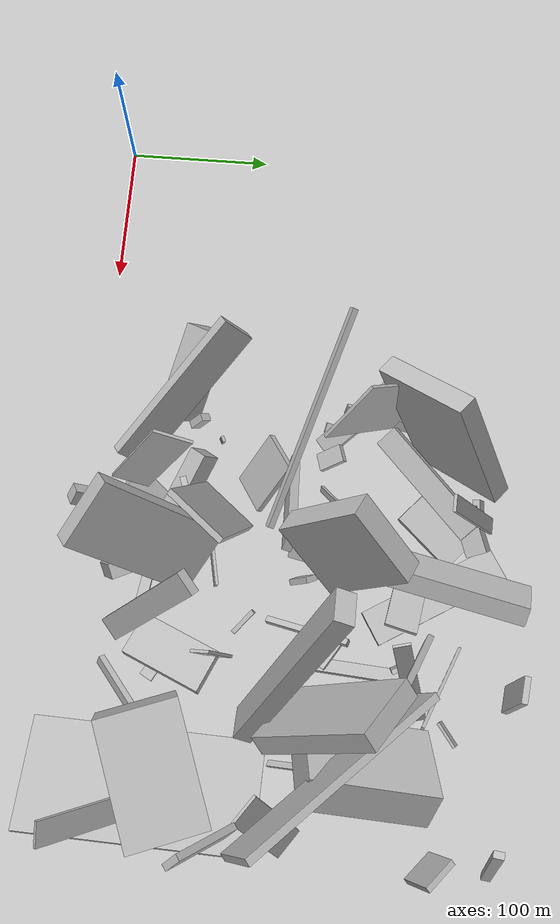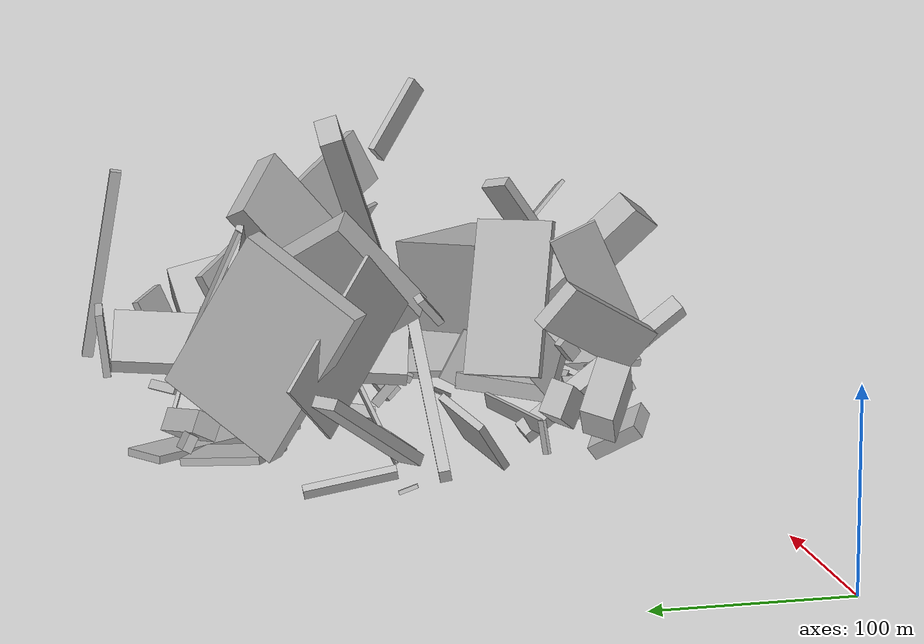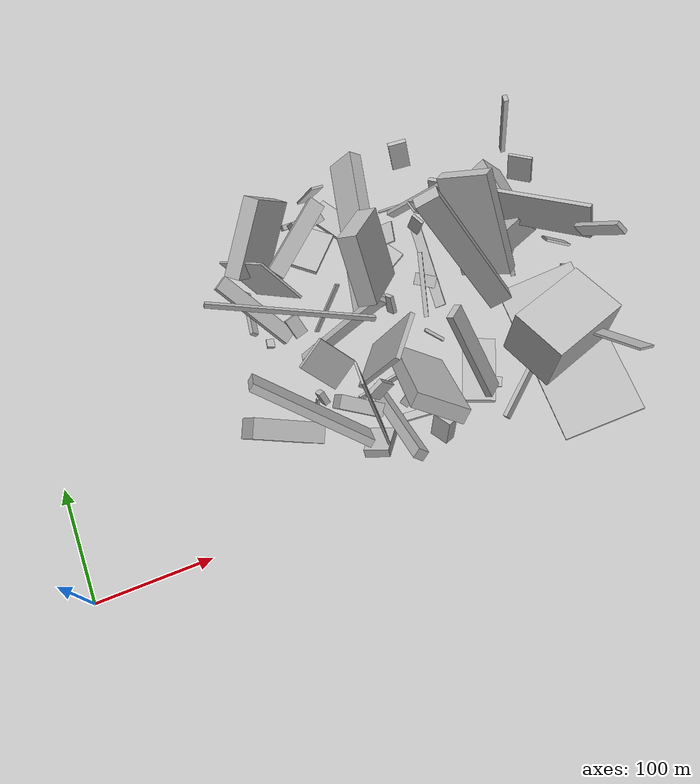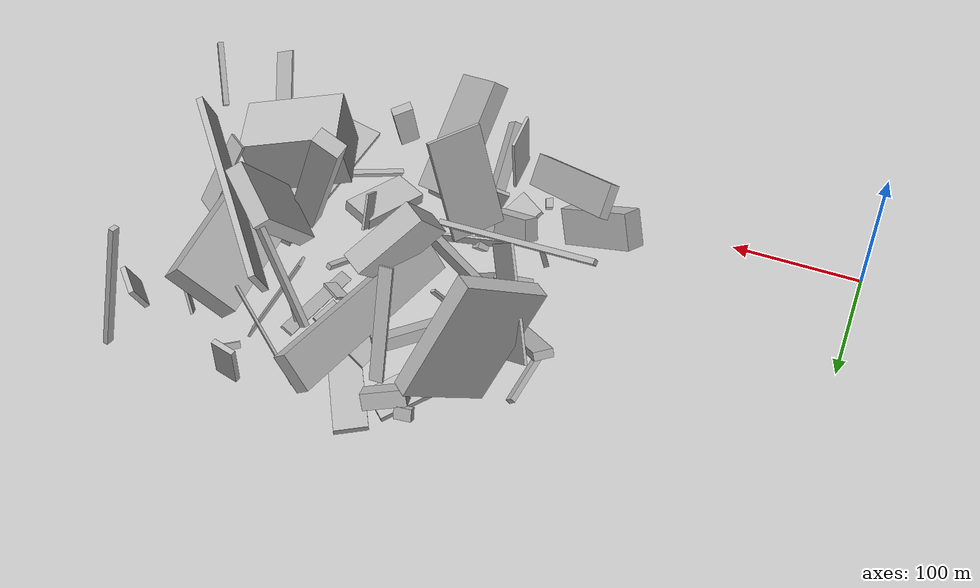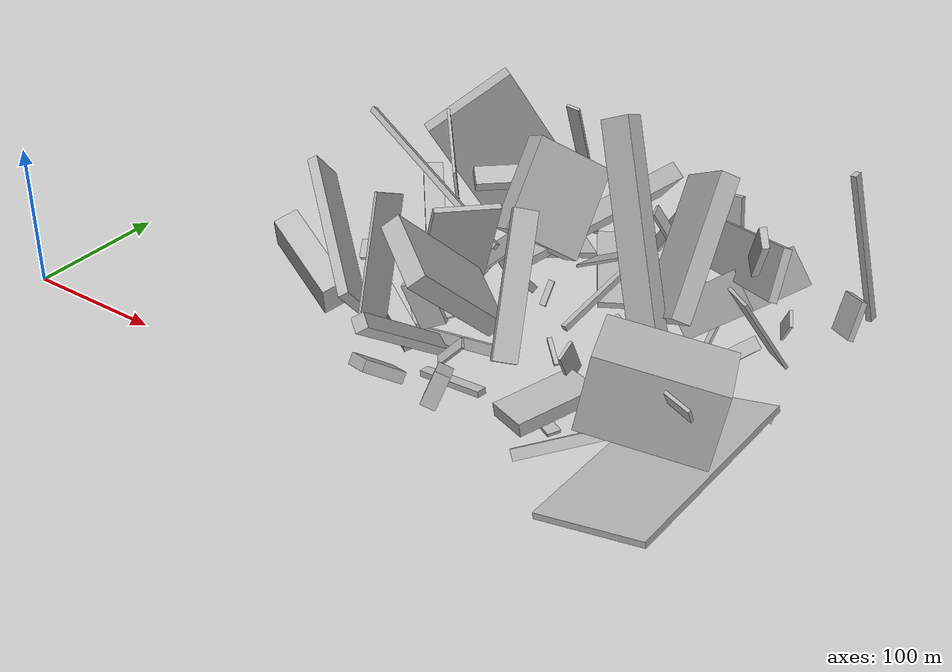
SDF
<sdf version="1.6">
 <world name="default">
  <model name="building_2">
   <static>0</static>
   <pose>389.1670423206415 182.27345326725268 71.20522427125024 0.9985611994210901 0.44155829710526634 0.672200436986714</pose>
   <link name="link">
    <gravity>0</gravity>
    <pose>0 0 23.0 0 0 0</pose>
    <collision name="collision"><geometry><box><size>13 94 46</size></box></geometry></collision>
    <visual name="visual">
     <cast_shadows>0</cast_shadows>
     <geometry><box><size>13 94 46</size></box></geometry>
     <material>
      <script>
       <uri>model://HANNAS_wall/materials/scripts</uri>
       <uri>model://HANNAS_wall/materials/textures</uri>
       <name>vrc/HANNAS_wall</name>
      </script>
     </material>
    </visual>
   </link>
  </model>
  <model name="building_4">
   <static>0</static>
   <pose>284.6367889503489 41.436290306247784 36.51101400669914 0.7848779041602345 0.5691758990537518 -2.6156911117196264</pose>
   <link name="link">
    <gravity>0</gravity>
    <pose>0 0 5.0 0 0 0</pose>
    <collision name="collision"><geometry><box><size>9 104 10</size></box></geometry></collision>
    <visual name="visual">
     <cast_shadows>0</cast_shadows>
     <geometry><box><size>9 104 10</size></box></geometry>
     <material>
      <script>
       <uri>model://HANNAS_wall/materials/scripts</uri>
       <uri>model://HANNAS_wall/materials/textures</uri>
       <name>vrc/HANNAS_wall</name>
      </script>
     </material>
    </visual>
   </link>
  </model>
  <model name="building_5">
   <static>0</static>
   <pose>303.31625523544255 217.26199748995083 42.439125821296315 -0.0667729580504567 -0.6869832761657249 2.960606714397487</pose>
   <link name="link">
    <gravity>0</gravity>
    <pose>0 0 14.5 0 0 0</pose>
    <collision name="collision"><geometry><box><size>13 150 29</size></box></geometry></collision>
    <visual name="visual">
     <cast_shadows>0</cast_shadows>
     <geometry><box><size>13 150 29</size></box></geometry>
     <material>
      <script>
       <uri>model://HANNAS_wall/materials/scripts</uri>
       <uri>model://HANNAS_wall/materials/textures</uri>
       <name>vrc/HANNAS_wall</name>
      </script>
     </material>
    </visual>
   </link>
  </model>
  <model name="building_16">
   <static>0</static>
   <pose>372.4997254167869 144.98639615702987 87.56449912963286 1.093936848090944 0.2971415132475192 1.3772643937018203</pose>
   <link name="link">
    <gravity>0</gravity>
    <pose>0 0 10.5 0 0 0</pose>
    <collision name="collision"><geometry><box><size>12 150 21</size></box></geometry></collision>
    <visual name="visual">
     <cast_shadows>0</cast_shadows>
     <geometry><box><size>12 150 21</size></box></geometry>
     <material>
      <script>
       <uri>model://HANNAS_wall/materials/scripts</uri>
       <uri>model://HANNAS_wall/materials/textures</uri>
       <name>vrc/HANNAS_wall</name>
      </script>
     </material>
    </visual>
   </link>
  </model>
  <model name="building_19">
   <static>0</static>
   <pose>433.5303821482553 90.47722792879836 49.387675971761816 1.0917649847006579 -1.3912077532217386 0.8278886072970991</pose>
   <link name="link">
    <gravity>0</gravity>
    <pose>0 0 25.5 0 0 0</pose>
    <collision name="collision"><geometry><box><size>49 78 51</size></box></geometry></collision>
    <visual name="visual">
     <cast_shadows>0</cast_shadows>
     <geometry><box><size>49 78 51</size></box></geometry>
     <material>
      <script>
       <uri>model://HANNAS_wall/materials/scripts</uri>
       <uri>model://HANNAS_wall/materials/textures</uri>
       <name>vrc/HANNAS_wall</name>
      </script>
     </material>
    </visual>
   </link>
  </model>
  <model name="building_20">
   <static>0</static>
   <pose>313.14509885217643 84.16151838064405 54.130318871678924 0.7341440670826089 0.3880051204111599 -0.5609156109944797</pose>
   <link name="link">
    <gravity>0</gravity>
    <pose>0 0 46.0 0 0 0</pose>
    <collision name="collision"><geometry><box><size>45 13 92</size></box></geometry></collision>
    <visual name="visual">
     <cast_shadows>0</cast_shadows>
     <geometry><box><size>45 13 92</size></box></geometry>
     <material>
      <script>
       <uri>model://HANNAS_wall/materials/scripts</uri>
       <uri>model://HANNAS_wall/materials/textures</uri>
       <name>vrc/HANNAS_wall</name>
      </script>
     </material>
    </visual>
   </link>
  </model>
  <model name="building_29">
   <static>0</static>
   <pose>201.60415786806828 192.60456864345127 9.658196869475445 -0.7237716845833972 0.19765439289558648 1.4251949318037043</pose>
   <link name="link">
    <gravity>0</gravity>
    <pose>0 0 3.5 0 0 0</pose>
    <collision name="collision"><geometry><box><size>47 4 7</size></box></geometry></collision>
    <visual name="visual">
     <cast_shadows>0</cast_shadows>
     <geometry><box><size>47 4 7</size></box></geometry>
     <material>
      <script>
       <uri>model://HANNAS_wall/materials/scripts</uri>
       <uri>model://HANNAS_wall/materials/textures</uri>
       <name>vrc/HANNAS_wall</name>
      </script>
     </material>
    </visual>
   </link>
  </model>
  <model name="building_31">
   <static>0</static>
   <pose>320.92424244755534 191.32142856800064 69.17375716509056 0.9498713634668221 -0.41264947051410455 -0.45686577443252985</pose>
   <link name="link">
    <gravity>0</gravity>
    <pose>0 0 28.0 0 0 0</pose>
    <collision name="collision"><geometry><box><size>17 64 56</size></box></geometry></collision>
    <visual name="visual">
     <cast_shadows>0</cast_shadows>
     <geometry><box><size>17 64 56</size></box></geometry>
     <material>
      <script>
       <uri>model://HANNAS_wall/materials/scripts</uri>
       <uri>model://HANNAS_wall/materials/textures</uri>
       <name>vrc/HANNAS_wall</name>
      </script>
     </material>
    </visual>
   </link>
  </model>
  <model name="building_37">
   <static>0</static>
   <pose>227.4339325967488 160.75758974860616 21.633996870139942 1.4820337109693011 -0.6296216612123448 1.9066985746679765</pose>
   <link name="link">
    <gravity>0</gravity>
    <pose>0 0 6.0 0 0 0</pose>
    <collision name="collision"><geometry><box><size>19 4 12</size></box></geometry></collision>
    <visual name="visual">
     <cast_shadows>0</cast_shadows>
     <geometry><box><size>19 4 12</size></box></geometry>
     <material>
      <script>
       <uri>model://HANNAS_wall/materials/scripts</uri>
       <uri>model://HANNAS_wall/materials/textures</uri>
       <name>vrc/HANNAS_wall</name>
      </script>
     </material>
    </visual>
   </link>
  </model>
  <model name="building_41">
   <static>0</static>
   <pose>318.70690928476915 237.3415982311377 3.370481435347543 0.01441911845690003 -0.00407596934792434 2.1134964530169524</pose>
   <link name="link">
    <gravity>0</gravity>
    <pose>0 0 2.0 0 0 0</pose>
    <collision name="collision"><geometry><box><size>97 24 4</size></box></geometry></collision>
    <visual name="visual">
     <cast_shadows>0</cast_shadows>
     <geometry><box><size>97 24 4</size></box></geometry>
     <material>
      <script>
       <uri>model://HANNAS_wall/materials/scripts</uri>
       <uri>model://HANNAS_wall/materials/textures</uri>
       <name>vrc/HANNAS_wall</name>
      </script>
     </material>
    </visual>
   </link>
  </model>
  <model name="building_42">
   <static>0</static>
   <pose>315.7468793521727 47.71879672735081 14.274376958286426 -0.03754337181879618 -0.14325123115436697 -0.12068900066509265</pose>
   <link name="link">
    <gravity>0</gravity>
    <pose>0 0 2.0 0 0 0</pose>
    <collision name="collision"><geometry><box><size>48 7 4</size></box></geometry></collision>
    <visual name="visual">
     <cast_shadows>0</cast_shadows>
     <geometry><box><size>48 7 4</size></box></geometry>
     <material>
      <script>
       <uri>model://HANNAS_wall/materials/scripts</uri>
       <uri>model://HANNAS_wall/materials/textures</uri>
       <name>vrc/HANNAS_wall</name>
      </script>
     </material>
    </visual>
   </link>
  </model>
  <model name="building_43">
   <static>0</static>
   <pose>274.05725989623136 34.01783897374855 14.162420916816949 1.9348309743036527 -0.5289153004255487 -2.2191907962247406</pose>
   <link name="link">
    <gravity>0</gravity>
    <pose>0 0 11.0 0 0 0</pose>
    <collision name="collision"><geometry><box><size>29 8 22</size></box></geometry></collision>
    <visual name="visual">
     <cast_shadows>0</cast_shadows>
     <geometry><box><size>29 8 22</size></box></geometry>
     <material>
      <script>
       <uri>model://HANNAS_wall/materials/scripts</uri>
       <uri>model://HANNAS_wall/materials/textures</uri>
       <name>vrc/HANNAS_wall</name>
      </script>
     </material>
    </visual>
   </link>
  </model>
  <model name="building_46">
   <static>0</static>
   <pose>434.64756908951847 232.62956048191958 39.27638448647449 1.2205472409256723 0.8111524950324286 -0.32034500634459095</pose>
   <link name="link">
    <gravity>0</gravity>
    <pose>0 0 40.5 0 0 0</pose>
    <collision name="collision"><geometry><box><size>27 51 81</size></box></geometry></collision>
    <visual name="visual">
     <cast_shadows>0</cast_shadows>
     <geometry><box><size>27 51 81</size></box></geometry>
     <material>
      <script>
       <uri>model://HANNAS_wall/materials/scripts</uri>
       <uri>model://HANNAS_wall/materials/textures</uri>
       <name>vrc/HANNAS_wall</name>
      </script>
     </material>
    </visual>
   </link>
  </model>
  <model name="building_47">
   <static>0</static>
   <pose>228.510647873353 148.22319668001188 87.98290972498766 0.5209752103249604 -0.8978062479586 0.8376059530907116</pose>
   <link name="link">
    <gravity>0</gravity>
    <pose>0 0 2.0 0 0 0</pose>
    <collision name="collision"><geometry><box><size>4 144 4</size></box></geometry></collision>
    <visual name="visual">
     <cast_shadows>0</cast_shadows>
     <geometry><box><size>4 144 4</size></box></geometry>
     <material>
      <script>
       <uri>model://HANNAS_wall/materials/scripts</uri>
       <uri>model://HANNAS_wall/materials/textures</uri>
       <name>vrc/HANNAS_wall</name>
      </script>
     </material>
    </visual>
   </link>
  </model>
  <model name="building_52">
   <static>0</static>
   <pose>316.5435947829112 148.5609488382127 29.79684472197738 1.9571599764926173 -0.9061944603601789 1.5726252569122352</pose>
   <link name="link">
    <gravity>0</gravity>
    <pose>0 0 2.0 0 0 0</pose>
    <collision name="collision"><geometry><box><size>17 9 4</size></box></geometry></collision>
    <visual name="visual">
     <cast_shadows>0</cast_shadows>
     <geometry><box><size>17 9 4</size></box></geometry>
     <material>
      <script>
       <uri>model://HANNAS_wall/materials/scripts</uri>
       <uri>model://HANNAS_wall/materials/textures</uri>
       <name>vrc/HANNAS_wall</name>
      </script>
     </material>
    </visual>
   </link>
  </model>
  <model name="building_57">
   <static>0</static>
   <pose>388.2309852131568 225.0954569860752 60.087532771526455 1.1881841142022511 0.2765267406794335 0.6382773924179873</pose>
   <link name="link">
    <gravity>0</gravity>
    <pose>0 0 75.0 0 0 0</pose>
    <collision name="collision"><geometry><box><size>5 31 150</size></box></geometry></collision>
    <visual name="visual">
     <cast_shadows>0</cast_shadows>
     <geometry><box><size>5 31 150</size></box></geometry>
     <material>
      <script>
       <uri>model://HANNAS_wall/materials/scripts</uri>
       <uri>model://HANNAS_wall/materials/textures</uri>
       <name>vrc/HANNAS_wall</name>
      </script>
     </material>
    </visual>
   </link>
  </model>
  <model name="building_62">
   <static>0</static>
   <pose>263.7429303453534 245.9223130909378 8.552621311454029 1.4328227365096493 -1.4256454543184738 0.9919016743763746</pose>
   <link name="link">
    <gravity>0</gravity>
    <pose>0 0 14.0 0 0 0</pose>
    <collision name="collision"><geometry><box><size>4 46 28</size></box></geometry></collision>
    <visual name="visual">
     <cast_shadows>0</cast_shadows>
     <geometry><box><size>4 46 28</size></box></geometry>
     <material>
      <script>
       <uri>model://HANNAS_wall/materials/scripts</uri>
       <uri>model://HANNAS_wall/materials/textures</uri>
       <name>vrc/HANNAS_wall</name>
      </script>
     </material>
    </visual>
   </link>
  </model>
  <model name="building_65">
   <static>0</static>
   <pose>455.86298283144595 131.86423388272777 13.63463411777783 1.5666774662508152 -0.23519875590456785 -0.03450810391615301</pose>
   <link name="link">
    <gravity>0</gravity>
    <pose>0 0 75.0 0 0 0</pose>
    <collision name="collision"><geometry><box><size>72 4 150</size></box></geometry></collision>
    <visual name="visual">
     <cast_shadows>0</cast_shadows>
     <geometry><box><size>72 4 150</size></box></geometry>
     <material>
      <script>
       <uri>model://HANNAS_wall/materials/scripts</uri>
       <uri>model://HANNAS_wall/materials/textures</uri>
       <name>vrc/HANNAS_wall</name>
      </script>
     </material>
    </visual>
   </link>
  </model>
  <model name="building_74">
   <static>0</static>
   <pose>264.7634340503009 139.22775313026523 40.97524564693364 2.8755560670889695 -0.7805948470741145 0.01466957976243835</pose>
   <link name="link">
    <gravity>0</gravity>
    <pose>0 0 5.5 0 0 0</pose>
    <collision name="collision"><geometry><box><size>100 6 11</size></box></geometry></collision>
    <visual name="visual">
     <cast_shadows>0</cast_shadows>
     <geometry><box><size>100 6 11</size></box></geometry>
     <material>
      <script>
       <uri>model://HANNAS_wall/materials/scripts</uri>
       <uri>model://HANNAS_wall/materials/textures</uri>
       <name>vrc/HANNAS_wall</name>
      </script>
     </material>
    </visual>
   </link>
  </model>
  <model name="building_78">
   <static>0</static>
   <pose>275.99998274516895 74.09210834727168 45.33509753903515 1.5416578333138669 -0.4254397138793654 0.34640978617847</pose>
   <link name="link">
    <gravity>0</gravity>
    <pose>0 0 2.0 0 0 0</pose>
    <collision name="collision"><geometry><box><size>18 32 4</size></box></geometry></collision>
    <visual name="visual">
     <cast_shadows>0</cast_shadows>
     <geometry><box><size>18 32 4</size></box></geometry>
     <material>
      <script>
       <uri>model://HANNAS_wall/materials/scripts</uri>
       <uri>model://HANNAS_wall/materials/textures</uri>
       <name>vrc/HANNAS_wall</name>
      </script>
     </material>
    </visual>
   </link>
  </model>
  <model name="building_79">
   <static>0</static>
   <pose>220.36395754484022 234.35822560815112 75.69341940376728 1.5491127936670162 -0.5542182686071871 0.8930779023977912</pose>
   <link name="link">
    <gravity>0</gravity>
    <pose>0 0 6.5 0 0 0</pose>
    <collision name="collision"><geometry><box><size>68 91 13</size></box></geometry></collision>
    <visual name="visual">
     <cast_shadows>0</cast_shadows>
     <geometry><box><size>68 91 13</size></box></geometry>
     <material>
      <script>
       <uri>model://HANNAS_wall/materials/scripts</uri>
       <uri>model://HANNAS_wall/materials/textures</uri>
       <name>vrc/HANNAS_wall</name>
      </script>
     </material>
    </visual>
   </link>
  </model>
  <model name="building_81">
   <static>0</static>
   <pose>361.2508088270936 34.14463631464784 56.214788018666255 0.2720307812037077 0.6047073873794895 2.4139935360659406</pose>
   <link name="link">
    <gravity>0</gravity>
    <pose>0 0 44.5 0 0 0</pose>
    <collision name="collision"><geometry><box><size>6 15 89</size></box></geometry></collision>
    <visual name="visual">
     <cast_shadows>0</cast_shadows>
     <geometry><box><size>6 15 89</size></box></geometry>
     <material>
      <script>
       <uri>model://HANNAS_wall/materials/scripts</uri>
       <uri>model://HANNAS_wall/materials/textures</uri>
       <name>vrc/HANNAS_wall</name>
      </script>
     </material>
    </visual>
   </link>
  </model>
  <model name="building_88">
   <static>0</static>
   <pose>384.1232346292489 281.71058568733935 27.163844582149977 0.1140470458460885 0.14837261912713195 2.986008659828567</pose>
   <link name="link">
    <gravity>0</gravity>
    <pose>0 0 17.5 0 0 0</pose>
    <collision name="collision"><geometry><box><size>17 4 35</size></box></geometry></collision>
    <visual name="visual">
     <cast_shadows>0</cast_shadows>
     <geometry><box><size>17 4 35</size></box></geometry>
     <material>
      <script>
       <uri>model://HANNAS_wall/materials/scripts</uri>
       <uri>model://HANNAS_wall/materials/textures</uri>
       <name>vrc/HANNAS_wall</name>
      </script>
     </material>
    </visual>
   </link>
  </model>
  <model name="building_89">
   <static>0</static>
   <pose>482.3480845912686 267.44780863432004 62.267912495179445 1.7455653002927674 0.15064375655466677 -1.6881913384862797</pose>
   <link name="link">
    <gravity>0</gravity>
    <pose>0 0 2.0 0 0 0</pose>
    <collision name="collision"><geometry><box><size>6 109 4</size></box></geometry></collision>
    <visual name="visual">
     <cast_shadows>0</cast_shadows>
     <geometry><box><size>6 109 4</size></box></geometry>
     <material>
      <script>
       <uri>model://HANNAS_wall/materials/scripts</uri>
       <uri>model://HANNAS_wall/materials/textures</uri>
       <name>vrc/HANNAS_wall</name>
      </script>
     </material>
    </visual>
   </link>
  </model>
  <model name="building_90">
   <static>0</static>
   <pose>215.60282484766248 72.4855160644598 69.32017574770919 0.4888629836331101 -0.5202374690246356 0.614269042374367</pose>
   <link name="link">
    <gravity>0</gravity>
    <pose>0 0 12.5 0 0 0</pose>
    <collision name="collision"><geometry><box><size>7 108 25</size></box></geometry></collision>
    <visual name="visual">
     <cast_shadows>0</cast_shadows>
     <geometry><box><size>7 108 25</size></box></geometry>
     <material>
      <script>
       <uri>model://HANNAS_wall/materials/scripts</uri>
       <uri>model://HANNAS_wall/materials/textures</uri>
       <name>vrc/HANNAS_wall</name>
      </script>
     </material>
    </visual>
   </link>
  </model>
  <model name="building_92">
   <static>0</static>
   <pose>291.5185681723523 262.9176216293496 22.251214445334323 -1.2093817952874621 1.0565301344638904 2.2495448554806794</pose>
   <link name="link">
    <gravity>0</gravity>
    <pose>0 0 15.5 0 0 0</pose>
    <collision name="collision"><geometry><box><size>12 14 31</size></box></geometry></collision>
    <visual name="visual">
     <cast_shadows>0</cast_shadows>
     <geometry><box><size>12 14 31</size></box></geometry>
     <material>
      <script>
       <uri>model://HANNAS_wall/materials/scripts</uri>
       <uri>model://HANNAS_wall/materials/textures</uri>
       <name>vrc/HANNAS_wall</name>
      </script>
     </material>
    </visual>
   </link>
  </model>
  <model name="building_94">
   <static>0</static>
   <pose>353.52935770626084 153.03255620187463 35.36307153388805 -1.7642546597403885 -0.4084046737762466 1.3118072017448232</pose>
   <link name="link">
    <gravity>0</gravity>
    <pose>0 0 2.0 0 0 0</pose>
    <collision name="collision"><geometry><box><size>58 4 4</size></box></geometry></collision>
    <visual name="visual">
     <cast_shadows>0</cast_shadows>
     <geometry><box><size>58 4 4</size></box></geometry>
     <material>
      <script>
       <uri>model://HANNAS_wall/materials/scripts</uri>
       <uri>model://HANNAS_wall/materials/textures</uri>
       <name>vrc/HANNAS_wall</name>
      </script>
     </material>
    </visual>
   </link>
  </model>
  <model name="building_98">
   <static>0</static>
   <pose>468.77831909204775 118.25755503057177 117.11589020386232 -0.1316108823249958 -0.6987809681843796 2.2914398648575216</pose>
   <link name="link">
    <gravity>0</gravity>
    <pose>0 0 23.0 0 0 0</pose>
    <collision name="collision"><geometry><box><size>12 4 46</size></box></geometry></collision>
    <visual name="visual">
     <cast_shadows>0</cast_shadows>
     <geometry><box><size>12 4 46</size></box></geometry>
     <material>
      <script>
       <uri>model://HANNAS_wall/materials/scripts</uri>
       <uri>model://HANNAS_wall/materials/textures</uri>
       <name>vrc/HANNAS_wall</name>
      </script>
     </material>
    </visual>
   </link>
  </model>
  <model name="building_102">
   <static>0</static>
   <pose>405.0782691118284 42.38670661916828 14.78896529948014 -2.7252784121750553 0.9840806839084062 -0.5224623542685947</pose>
   <link name="link">
    <gravity>0</gravity>
    <pose>0 0 2.0 0 0 0</pose>
    <collision name="collision"><geometry><box><size>7 74 4</size></box></geometry></collision>
    <visual name="visual">
     <cast_shadows>0</cast_shadows>
     <geometry><box><size>7 74 4</size></box></geometry>
     <material>
      <script>
       <uri>model://HANNAS_wall/materials/scripts</uri>
       <uri>model://HANNAS_wall/materials/textures</uri>
       <name>vrc/HANNAS_wall</name>
      </script>
     </material>
    </visual>
   </link>
  </model>
  <model name="building_109">
   <static>0</static>
   <pose>266.1319594910262 166.67691930610275 25.97564947668915 0.9838405583631831 -0.27467626974025827 -1.3949065083047376</pose>
   <link name="link">
    <gravity>0</gravity>
    <pose>0 0 2.0 0 0 0</pose>
    <collision name="collision"><geometry><box><size>2 54 4</size></box></geometry></collision>
    <visual name="visual">
     <cast_shadows>0</cast_shadows>
     <geometry><box><size>2 54 4</size></box></geometry>
     <material>
      <script>
       <uri>model://HANNAS_wall/materials/scripts</uri>
       <uri>model://HANNAS_wall/materials/textures</uri>
       <name>vrc/HANNAS_wall</name>
      </script>
     </material>
    </visual>
   </link>
  </model>
  <model name="building_111">
   <static>0</static>
   <pose>476.8431613345117 131.80723036171705 65.58063740689929 1.5679691759159466 0.5793500522657055 -2.1967118919852013</pose>
   <link name="link">
    <gravity>0</gravity>
    <pose>0 0 10.0 0 0 0</pose>
    <collision name="collision"><geometry><box><size>2 60 20</size></box></geometry></collision>
    <visual name="visual">
     <cast_shadows>0</cast_shadows>
     <geometry><box><size>2 60 20</size></box></geometry>
     <material>
      <script>
       <uri>model://HANNAS_wall/materials/scripts</uri>
       <uri>model://HANNAS_wall/materials/textures</uri>
       <name>vrc/HANNAS_wall</name>
      </script>
     </material>
    </visual>
   </link>
  </model>
  <model name="building_113">
   <static>0</static>
   <pose>247.11226291818113 117.57982727671464 21.43983230413586 2.632843526804643 -0.7395147118765709 2.4610243388051396</pose>
   <link name="link">
    <gravity>0</gravity>
    <pose>0 0 2.0 0 0 0</pose>
    <collision name="collision"><geometry><box><size>42 31 4</size></box></geometry></collision>
    <visual name="visual">
     <cast_shadows>0</cast_shadows>
     <geometry><box><size>42 31 4</size></box></geometry>
     <material>
      <script>
       <uri>model://HANNAS_wall/materials/scripts</uri>
       <uri>model://HANNAS_wall/materials/textures</uri>
       <name>vrc/HANNAS_wall</name>
      </script>
     </material>
    </visual>
   </link>
  </model>
  <model name="building_115">
   <static>0</static>
   <pose>255.23844494066248 74.11279123364096 21.193686588926983 0.4061487447923742 -0.27692762168754115 1.0025187260409953</pose>
   <link name="link">
    <gravity>0</gravity>
    <pose>0 0 9.0 0 0 0</pose>
    <collision name="collision"><geometry><box><size>12 40 18</size></box></geometry></collision>
    <visual name="visual">
     <cast_shadows>0</cast_shadows>
     <geometry><box><size>12 40 18</size></box></geometry>
     <material>
      <script>
       <uri>model://HANNAS_wall/materials/scripts</uri>
       <uri>model://HANNAS_wall/materials/textures</uri>
       <name>vrc/HANNAS_wall</name>
      </script>
     </material>
    </visual>
   </link>
  </model>
  <model name="building_117">
   <static>0</static>
   <pose>302.09006906772 63.3985581710382 24.43502520551547 2.2842575173880433 -0.2608384492185673 2.236511841525286</pose>
   <link name="link">
    <gravity>0</gravity>
    <pose>0 0 1.0 0 0 0</pose>
    <collision name="collision"><geometry><box><size>8 22 2</size></box></geometry></collision>
    <visual name="visual">
     <cast_shadows>0</cast_shadows>
     <geometry><box><size>8 22 2</size></box></geometry>
     <material>
      <script>
       <uri>model://HANNAS_wall/materials/scripts</uri>
       <uri>model://HANNAS_wall/materials/textures</uri>
       <name>vrc/HANNAS_wall</name>
      </script>
     </material>
    </visual>
   </link>
  </model>
  <model name="building_121">
   <static>0</static>
   <pose>351.6553338341407 230.42337860386377 37.15244680375318 0.05442105328511181 0.639249499028925 -0.417751865149305</pose>
   <link name="link">
    <gravity>0</gravity>
    <pose>0 0 38.0 0 0 0</pose>
    <collision name="collision"><geometry><box><size>8 4 76</size></box></geometry></collision>
    <visual name="visual">
     <cast_shadows>0</cast_shadows>
     <geometry><box><size>8 4 76</size></box></geometry>
     <material>
      <script>
       <uri>model://HANNAS_wall/materials/scripts</uri>
       <uri>model://HANNAS_wall/materials/textures</uri>
       <name>vrc/HANNAS_wall</name>
      </script>
     </material>
    </visual>
   </link>
  </model>
  <model name="building_122">
   <static>0</static>
   <pose>400.07554412558534 242.65664001265776 10.512209997991357 -1.5478466630674486 0.5156280879417513 -0.925149878228621</pose>
   <link name="link">
    <gravity>0</gravity>
    <pose>0 0 9.0 0 0 0</pose>
    <collision name="collision"><geometry><box><size>2 5 18</size></box></geometry></collision>
    <visual name="visual">
     <cast_shadows>0</cast_shadows>
     <geometry><box><size>2 5 18</size></box></geometry>
     <material>
      <script>
       <uri>model://HANNAS_wall/materials/scripts</uri>
       <uri>model://HANNAS_wall/materials/textures</uri>
       <name>vrc/HANNAS_wall</name>
      </script>
     </material>
    </visual>
   </link>
  </model>
  <model name="building_124">
   <static>0</static>
   <pose>448.1558698958397 166.57521102341474 26.468365776075235 2.5426028154269416 -0.7402328452615169 2.8133631828014147</pose>
   <link name="link">
    <gravity>0</gravity>
    <pose>0 0 5.5 0 0 0</pose>
    <collision name="collision"><geometry><box><size>9 23 11</size></box></geometry></collision>
    <visual name="visual">
     <cast_shadows>0</cast_shadows>
     <geometry><box><size>9 23 11</size></box></geometry>
     <material>
      <script>
       <uri>model://HANNAS_wall/materials/scripts</uri>
       <uri>model://HANNAS_wall/materials/textures</uri>
       <name>vrc/HANNAS_wall</name>
      </script>
     </material>
    </visual>
   </link>
  </model>
  <model name="building_125">
   <static>0</static>
   <pose>216.05850919155597 58.32487615262255 35.117791236342136 1.1140812362222459 0.2634256433060683 -1.9996236575756432</pose>
   <link name="link">
    <gravity>0</gravity>
    <pose>0 0 31.0 0 0 0</pose>
    <collision name="collision"><geometry><box><size>17 28 62</size></box></geometry></collision>
    <visual name="visual">
     <cast_shadows>0</cast_shadows>
     <geometry><box><size>17 28 62</size></box></geometry>
     <material>
      <script>
       <uri>model://HANNAS_wall/materials/scripts</uri>
       <uri>model://HANNAS_wall/materials/textures</uri>
       <name>vrc/HANNAS_wall</name>
      </script>
     </material>
    </visual>
   </link>
  </model>
  <model name="building_139">
   <static>0</static>
   <pose>358.8897375567584 41.87459998936614 10.035208214630368 -1.4562202663466854 -0.08973973111074769 -0.4223682556020242</pose>
   <link name="link">
    <gravity>0</gravity>
    <pose>0 0 28.0 0 0 0</pose>
    <collision name="collision"><geometry><box><size>29 9 56</size></box></geometry></collision>
    <visual name="visual">
     <cast_shadows>0</cast_shadows>
     <geometry><box><size>29 9 56</size></box></geometry>
     <material>
      <script>
       <uri>model://HANNAS_wall/materials/scripts</uri>
       <uri>model://HANNAS_wall/materials/textures</uri>
       <name>vrc/HANNAS_wall</name>
      </script>
     </material>
    </visual>
   </link>
  </model>
  <model name="building_141">
   <static>0</static>
   <pose>254.87146395106075 262.1435203815007 21.14719614445451 -1.6996722082782965 0.4841241646373949 -1.589479314384761</pose>
   <link name="link">
    <gravity>0</gravity>
    <pose>0 0 6.5 0 0 0</pose>
    <collision name="collision"><geometry><box><size>5 9 13</size></box></geometry></collision>
    <visual name="visual">
     <cast_shadows>0</cast_shadows>
     <geometry><box><size>5 9 13</size></box></geometry>
     <material>
      <script>
       <uri>model://HANNAS_wall/materials/scripts</uri>
       <uri>model://HANNAS_wall/materials/textures</uri>
       <name>vrc/HANNAS_wall</name>
      </script>
     </material>
    </visual>
   </link>
  </model>
  <model name="building_142">
   <static>0</static>
   <pose>275.8636331219276 97.12452725035985 40.52087585747597 0.0725428639966856 -0.3556924346666071 2.4366362734845013</pose>
   <link name="link">
    <gravity>0</gravity>
    <pose>0 0 40.0 0 0 0</pose>
    <collision name="collision"><geometry><box><size>4 42 80</size></box></geometry></collision>
    <visual name="visual">
     <cast_shadows>0</cast_shadows>
     <geometry><box><size>4 42 80</size></box></geometry>
     <material>
      <script>
       <uri>model://HANNAS_wall/materials/scripts</uri>
       <uri>model://HANNAS_wall/materials/textures</uri>
       <name>vrc/HANNAS_wall</name>
      </script>
     </material>
    </visual>
   </link>
  </model>
  <model name="building_146">
   <static>0</static>
   <pose>370.54405752239956 94.28707721923999 26.11005454881494 1.4976301627246638 -1.0750069159544942 -1.5285887248097152</pose>
   <link name="link">
    <gravity>0</gravity>
    <pose>0 0 1.0 0 0 0</pose>
    <collision name="collision"><geometry><box><size>29 14 2</size></box></geometry></collision>
    <visual name="visual">
     <cast_shadows>0</cast_shadows>
     <geometry><box><size>29 14 2</size></box></geometry>
     <material>
      <script>
       <uri>model://HANNAS_wall/materials/scripts</uri>
       <uri>model://HANNAS_wall/materials/textures</uri>
       <name>vrc/HANNAS_wall</name>
      </script>
     </material>
    </visual>
   </link>
  </model>
  <model name="building_151">
   <static>0</static>
   <pose>202.26731507861055 184.59296378067248 33.77402973168136 0.5616522059067752 0.009629618494935882 0.6823911045463801</pose>
   <link name="link">
    <gravity>0</gravity>
    <pose>0 0 3.0 0 0 0</pose>
    <collision name="collision"><geometry><box><size>14 80 6</size></box></geometry></collision>
    <visual name="visual">
     <cast_shadows>0</cast_shadows>
     <geometry><box><size>14 80 6</size></box></geometry>
     <material>
      <script>
       <uri>model://HANNAS_wall/materials/scripts</uri>
       <uri>model://HANNAS_wall/materials/textures</uri>
       <name>vrc/HANNAS_wall</name>
      </script>
     </material>
    </visual>
   </link>
  </model>
  <model name="building_157">
   <static>0</static>
   <pose>292.9241457567226 86.94178802852518 19.781847910156813 3.1248469312379745 -0.18647954039774975 -1.3677099751048756</pose>
   <link name="link">
    <gravity>0</gravity>
    <pose>0 0 4.0 0 0 0</pose>
    <collision name="collision"><geometry><box><size>2 64 8</size></box></geometry></collision>
    <visual name="visual">
     <cast_shadows>0</cast_shadows>
     <geometry><box><size>2 64 8</size></box></geometry>
     <material>
      <script>
       <uri>model://HANNAS_wall/materials/scripts</uri>
       <uri>model://HANNAS_wall/materials/textures</uri>
       <name>vrc/HANNAS_wall</name>
      </script>
     </material>
    </visual>
   </link>
  </model>
  <model name="building_160">
   <static>0</static>
   <pose>278.3308583896512 265.5026279022157 49.05683332099656 0.44173134734294484 0.08183773462493178 -0.03935109150291381</pose>
   <link name="link">
    <gravity>0</gravity>
    <pose>0 0 40.0 0 0 0</pose>
    <collision name="collision"><geometry><box><size>10 2 80</size></box></geometry></collision>
    <visual name="visual">
     <cast_shadows>0</cast_shadows>
     <geometry><box><size>10 2 80</size></box></geometry>
     <material>
      <script>
       <uri>model://HANNAS_wall/materials/scripts</uri>
       <uri>model://HANNAS_wall/materials/textures</uri>
       <name>vrc/HANNAS_wall</name>
      </script>
     </material>
    </visual>
   </link>
  </model>
  <model name="building_163">
   <static>0</static>
   <pose>362.03258233876795 168.36590853759586 8.619517518705248 0.42892078151378277 0.057236777251381 -0.5707967615244628</pose>
   <link name="link">
    <gravity>0</gravity>
    <pose>0 0 1.0 0 0 0</pose>
    <collision name="collision"><geometry><box><size>20 11 2</size></box></geometry></collision>
    <visual name="visual">
     <cast_shadows>0</cast_shadows>
     <geometry><box><size>20 11 2</size></box></geometry>
     <material>
      <script>
       <uri>model://HANNAS_wall/materials/scripts</uri>
       <uri>model://HANNAS_wall/materials/textures</uri>
       <name>vrc/HANNAS_wall</name>
      </script>
     </material>
    </visual>
   </link>
  </model>
  <model name="building_167">
   <static>0</static>
   <pose>434.19713316011257 155.911046378937 46.479893909177484 2.7544629373641074 -0.7269019970153053 1.52467001250572</pose>
   <link name="link">
    <gravity>0</gravity>
    <pose>0 0 1.0 0 0 0</pose>
    <collision name="collision"><geometry><box><size>56 4 2</size></box></geometry></collision>
    <visual name="visual">
     <cast_shadows>0</cast_shadows>
     <geometry><box><size>56 4 2</size></box></geometry>
     <material>
      <script>
       <uri>model://HANNAS_wall/materials/scripts</uri>
       <uri>model://HANNAS_wall/materials/textures</uri>
       <name>vrc/HANNAS_wall</name>
      </script>
     </material>
    </visual>
   </link>
  </model>
  <model name="building_169">
   <static>0</static>
   <pose>262.02211047297993 217.8174704118423 62.312545168580456 0.023170717446887888 1.0939980531867393 2.3452817540359443</pose>
   <link name="link">
    <gravity>0</gravity>
    <pose>0 0 7.5 0 0 0</pose>
    <collision name="collision"><geometry><box><size>8 80 15</size></box></geometry></collision>
    <visual name="visual">
     <cast_shadows>0</cast_shadows>
     <geometry><box><size>8 80 15</size></box></geometry>
     <material>
      <script>
       <uri>model://HANNAS_wall/materials/scripts</uri>
       <uri>model://HANNAS_wall/materials/textures</uri>
       <name>vrc/HANNAS_wall</name>
      </script>
     </material>
    </visual>
   </link>
  </model>
  <model name="building_176">
   <static>0</static>
   <pose>225.47870520393005 178.26193829624904 60.97853670761299 0.13782181715379932 -0.8293669195936381 -1.016339831990581</pose>
   <link name="link">
    <gravity>0</gravity>
    <pose>0 0 23.0 0 0 0</pose>
    <collision name="collision"><geometry><box><size>80 2 46</size></box></geometry></collision>
    <visual name="visual">
     <cast_shadows>0</cast_shadows>
     <geometry><box><size>80 2 46</size></box></geometry>
     <material>
      <script>
       <uri>model://HANNAS_wall/materials/scripts</uri>
       <uri>model://HANNAS_wall/materials/textures</uri>
       <name>vrc/HANNAS_wall</name>
      </script>
     </material>
    </visual>
   </link>
  </model>
  <model name="building_178">
   <static>0</static>
   <pose>206.66077778774272 157.72512616621475 5.968858025029261 1.9377853025442118 -0.23246780830980862 2.9073609368688347</pose>
   <link name="link">
    <gravity>0</gravity>
    <pose>0 0 5.0 0 0 0</pose>
    <collision name="collision"><geometry><box><size>7 2 10</size></box></geometry></collision>
    <visual name="visual">
     <cast_shadows>0</cast_shadows>
     <geometry><box><size>7 2 10</size></box></geometry>
     <material>
      <script>
       <uri>model://HANNAS_wall/materials/scripts</uri>
       <uri>model://HANNAS_wall/materials/textures</uri>
       <name>vrc/HANNAS_wall</name>
      </script>
     </material>
    </visual>
   </link>
  </model>
  <model name="building_187">
   <static>0</static>
   <pose>378.4903243898843 240.16994749273488 27.475111109154437 -1.4683394224406234 -0.680548270176271 -0.48657045277172256</pose>
   <link name="link">
    <gravity>0</gravity>
    <pose>0 0 1.0 0 0 0</pose>
    <collision name="collision"><geometry><box><size>80 2 2</size></box></geometry></collision>
    <visual name="visual">
     <cast_shadows>0</cast_shadows>
     <geometry><box><size>80 2 2</size></box></geometry>
     <material>
      <script>
       <uri>model://HANNAS_wall/materials/scripts</uri>
       <uri>model://HANNAS_wall/materials/textures</uri>
       <name>vrc/HANNAS_wall</name>
      </script>
     </material>
    </visual>
   </link>
  </model>
  <model name="building_189">
   <static>0</static>
   <pose>470.1032423446489 40.25764819591295 67.60862289881904 2.3445179914677174 0.39925057172991063 -0.004126499087121538</pose>
   <link name="link">
    <gravity>0</gravity>
    <pose>0 0 1.0 0 0 0</pose>
    <collision name="collision"><geometry><box><size>16 80 2</size></box></geometry></collision>
    <visual name="visual">
     <cast_shadows>0</cast_shadows>
     <geometry><box><size>16 80 2</size></box></geometry>
     <material>
      <script>
       <uri>model://HANNAS_wall/materials/scripts</uri>
       <uri>model://HANNAS_wall/materials/textures</uri>
       <name>vrc/HANNAS_wall</name>
      </script>
     </material>
    </visual>
   </link>
  </model>
  <model name="building_194">
   <static>0</static>
   <pose>485.54583699159207 126.46341467779301 12.893283482425886 0.47667718556472893 -0.45067606499010526 -2.511485919905122</pose>
   <link name="link">
    <gravity>0</gravity>
    <pose>0 0 4.5 0 0 0</pose>
    <collision name="collision"><geometry><box><size>2 9 9</size></box></geometry></collision>
    <visual name="visual">
     <cast_shadows>0</cast_shadows>
     <geometry><box><size>2 9 9</size></box></geometry>
     <material>
      <script>
       <uri>model://HANNAS_wall/materials/scripts</uri>
       <uri>model://HANNAS_wall/materials/textures</uri>
       <name>vrc/HANNAS_wall</name>
      </script>
     </material>
    </visual>
   </link>
  </model>
  <model name="building_207">
   <static>0</static>
   <pose>487.50154499686755 231.78574873559472 17.91018139873293 -0.34264592036653796 -0.2324403179312303 -0.7478489650753314</pose>
   <link name="link">
    <gravity>0</gravity>
    <pose>0 0 13.0 0 0 0</pose>
    <collision name="collision"><geometry><box><size>23 4 26</size></box></geometry></collision>
    <visual name="visual">
     <cast_shadows>0</cast_shadows>
     <geometry><box><size>23 4 26</size></box></geometry>
     <material>
      <script>
       <uri>model://HANNAS_wall/materials/scripts</uri>
       <uri>model://HANNAS_wall/materials/textures</uri>
       <name>vrc/HANNAS_wall</name>
      </script>
     </material>
    </visual>
   </link>
  </model>
  <model name="building_212">
   <static>0</static>
   <pose>381.27630320762216 213.65545315841172 42.97643060095739 1.2978212722253109 -0.9998027216928148 -2.673248196575483</pose>
   <link name="link">
    <gravity>0</gravity>
    <pose>0 0 5.5 0 0 0</pose>
    <collision name="collision"><geometry><box><size>80 2 11</size></box></geometry></collision>
    <visual name="visual">
     <cast_shadows>0</cast_shadows>
     <geometry><box><size>80 2 11</size></box></geometry>
     <material>
      <script>
       <uri>model://HANNAS_wall/materials/scripts</uri>
       <uri>model://HANNAS_wall/materials/textures</uri>
       <name>vrc/HANNAS_wall</name>
      </script>
     </material>
    </visual>
   </link>
  </model>
  <model name="building_214">
   <static>0</static>
   <pose>386.36839935960955 51.63447303475192 6.252707807717673 -1.5593742428111481 -0.042011383370808224 1.0662052271413296</pose>
   <link name="link">
    <gravity>0</gravity>
    <pose>0 0 5.5 0 0 0</pose>
    <collision name="collision"><geometry><box><size>9 2 11</size></box></geometry></collision>
    <visual name="visual">
     <cast_shadows>0</cast_shadows>
     <geometry><box><size>9 2 11</size></box></geometry>
     <material>
      <script>
       <uri>model://HANNAS_wall/materials/scripts</uri>
       <uri>model://HANNAS_wall/materials/textures</uri>
       <name>vrc/HANNAS_wall</name>
      </script>
     </material>
    </visual>
   </link>
  </model>
  <model name="building_221">
   <static>0</static>
   <pose>302.5239083950209 156.69562704257598 23.32441475785055 -0.0747457011127658 -0.6781409294585665 1.1889555660718831</pose>
   <link name="link">
    <gravity>0</gravity>
    <pose>0 0 11.5 0 0 0</pose>
    <collision name="collision"><geometry><box><size>5 6 23</size></box></geometry></collision>
    <visual name="visual">
     <cast_shadows>0</cast_shadows>
     <geometry><box><size>5 6 23</size></box></geometry>
     <material>
      <script>
       <uri>model://HANNAS_wall/materials/scripts</uri>
       <uri>model://HANNAS_wall/materials/textures</uri>
       <name>vrc/HANNAS_wall</name>
      </script>
     </material>
    </visual>
   </link>
  </model>
  <model name="building_224">
   <static>0</static>
   <pose>261.5624622393233 50.132977912647505 84.46942575977994 1.751811154041369 -0.4302830110650115 -1.671234630759429</pose>
   <link name="link">
    <gravity>0</gravity>
    <pose>0 0 1.0 0 0 0</pose>
    <collision name="collision"><geometry><box><size>25 77 2</size></box></geometry></collision>
    <visual name="visual">
     <cast_shadows>0</cast_shadows>
     <geometry><box><size>25 77 2</size></box></geometry>
     <material>
      <script>
       <uri>model://HANNAS_wall/materials/scripts</uri>
       <uri>model://HANNAS_wall/materials/textures</uri>
       <name>vrc/HANNAS_wall</name>
      </script>
     </material>
    </visual>
   </link>
  </model>
  <model name="building_231">
   <static>0</static>
   <pose>451.16623472478443 227.34695041861718 20.203451928690143 2.1204689027560724 0.13813126081115884 0.5865073863401625</pose>
   <link name="link">
    <gravity>0</gravity>
    <pose>0 0 6.0 0 0 0</pose>
    <collision name="collision"><geometry><box><size>2 20 12</size></box></geometry></collision>
    <visual name="visual">
     <cast_shadows>0</cast_shadows>
     <geometry><box><size>2 20 12</size></box></geometry>
     <material>
      <script>
       <uri>model://HANNAS_wall/materials/scripts</uri>
       <uri>model://HANNAS_wall/materials/textures</uri>
       <name>vrc/HANNAS_wall</name>
      </script>
     </material>
    </visual>
   </link>
  </model>
  <model name="building_232">
   <static>0</static>
   <pose>372.49549530337384 208.1325223609124 33.7191284702226 1.4567486951844075 -0.11254989140473116 -2.65844575780091</pose>
   <link name="link">
    <gravity>0</gravity>
    <pose>0 0 6.0 0 0 0</pose>
    <collision name="collision"><geometry><box><size>3 20 12</size></box></geometry></collision>
    <visual name="visual">
     <cast_shadows>0</cast_shadows>
     <geometry><box><size>3 20 12</size></box></geometry>
     <material>
      <script>
       <uri>model://HANNAS_wall/materials/scripts</uri>
       <uri>model://HANNAS_wall/materials/textures</uri>
       <name>vrc/HANNAS_wall</name>
      </script>
     </material>
    </visual>
   </link>
  </model>
  <model name="building_236">
   <static>0</static>
   <pose>315.63471837436794 23.99625446652112 14.742218579134509 -0.3783417969349023 -0.2624184019338886 -1.0779656313393509</pose>
   <link name="link">
    <gravity>0</gravity>
    <pose>0 0 11.5 0 0 0</pose>
    <collision name="collision"><geometry><box><size>17 10 23</size></box></geometry></collision>
    <visual name="visual">
     <cast_shadows>0</cast_shadows>
     <geometry><box><size>17 10 23</size></box></geometry>
     <material>
      <script>
       <uri>model://HANNAS_wall/materials/scripts</uri>
       <uri>model://HANNAS_wall/materials/textures</uri>
       <name>vrc/HANNAS_wall</name>
      </script>
     </material>
    </visual>
   </link>
  </model>
  <model name="building_241">
   <static>0</static>
   <pose>345.5154894848456 111.2286706868947 15.100833296459733 -1.5577010812702505 0.4116003560501821 -0.7364468610810088</pose>
   <link name="link">
    <gravity>0</gravity>
    <pose>0 0 1.5 0 0 0</pose>
    <collision name="collision"><geometry><box><size>20 2 3</size></box></geometry></collision>
    <visual name="visual">
     <cast_shadows>0</cast_shadows>
     <geometry><box><size>20 2 3</size></box></geometry>
     <material>
      <script>
       <uri>model://HANNAS_wall/materials/scripts</uri>
       <uri>model://HANNAS_wall/materials/textures</uri>
       <name>vrc/HANNAS_wall</name>
      </script>
     </material>
    </visual>
   </link>
  </model>
  <model name="building_247">
   <static>0</static>
   <pose>230.1331007990738 76.95922344234194 65.78420451250153 1.5644087424715878 0.8543274177414805 -1.1923698896881556</pose>
   <link name="link">
    <gravity>0</gravity>
    <pose>0 0 2.5 0 0 0</pose>
    <collision name="collision"><geometry><box><size>12 7 5</size></box></geometry></collision>
    <visual name="visual">
     <cast_shadows>0</cast_shadows>
     <geometry><box><size>12 7 5</size></box></geometry>
     <material>
      <script>
       <uri>model://HANNAS_wall/materials/scripts</uri>
       <uri>model://HANNAS_wall/materials/textures</uri>
       <name>vrc/HANNAS_wall</name>
      </script>
     </material>
    </visual>
   </link>
  </model>
  <model name="building_248">
   <static>0</static>
   <pose>224.34945798669636 87.19785764193794 12.74553867711628 0.014960909093979617 -0.22357934006346541 -2.6592577058936824</pose>
   <link name="link">
    <gravity>0</gravity>
    <pose>0 0 8.5 0 0 0</pose>
    <collision name="collision"><geometry><box><size>4 2 17</size></box></geometry></collision>
    <visual name="visual">
     <cast_shadows>0</cast_shadows>
     <geometry><box><size>4 2 17</size></box></geometry>
     <material>
      <script>
       <uri>model://HANNAS_wall/materials/scripts</uri>
       <uri>model://HANNAS_wall/materials/textures</uri>
       <name>vrc/HANNAS_wall</name>
      </script>
     </material>
    </visual>
   </link>
  </model>
  <model name="building_249">
   <static>0</static>
   <pose>374.4248665987615 220.8478443431885 13.308945342528554 1.7627236000824635 -0.4662506596512156 -0.1761614799781959</pose>
   <link name="link">
    <gravity>0</gravity>
    <pose>0 0 40.0 0 0 0</pose>
    <collision name="collision"><geometry><box><size>10 2 80</size></box></geometry></collision>
    <visual name="visual">
     <cast_shadows>0</cast_shadows>
     <geometry><box><size>10 2 80</size></box></geometry>
     <material>
      <script>
       <uri>model://HANNAS_wall/materials/scripts</uri>
       <uri>model://HANNAS_wall/materials/textures</uri>
       <name>vrc/HANNAS_wall</name>
      </script>
     </material>
    </visual>
   </link>
  </model>
  <model name="building_257">
   <static>0</static>
   <pose>305.5248519955253 221.8804944454317 13.820761833708639 -1.0376060117291332 -0.022081270323917185 -1.812705955168942</pose>
   <link name="link">
    <gravity>0</gravity>
    <pose>0 0 24.5 0 0 0</pose>
    <collision name="collision"><geometry><box><size>21 2 49</size></box></geometry></collision>
    <visual name="visual">
     <cast_shadows>0</cast_shadows>
     <geometry><box><size>21 2 49</size></box></geometry>
     <material>
      <script>
       <uri>model://HANNAS_wall/materials/scripts</uri>
       <uri>model://HANNAS_wall/materials/textures</uri>
       <name>vrc/HANNAS_wall</name>
      </script>
     </material>
    </visual>
   </link>
  </model>
 </world>
</sdf>
